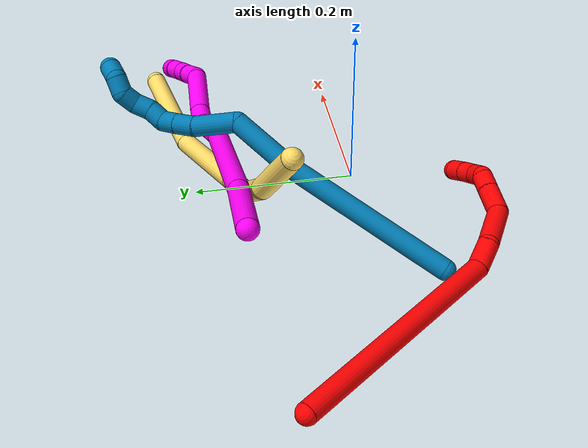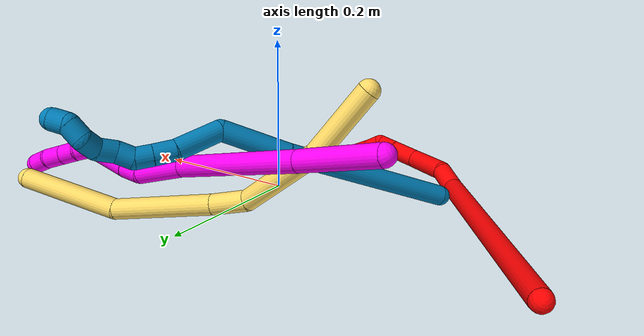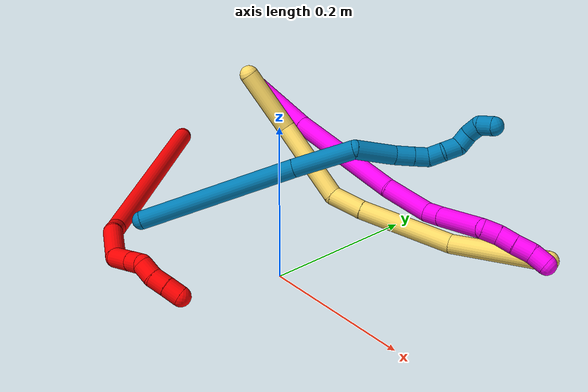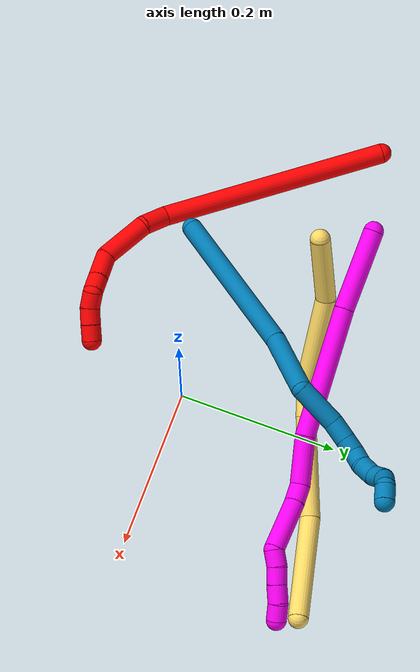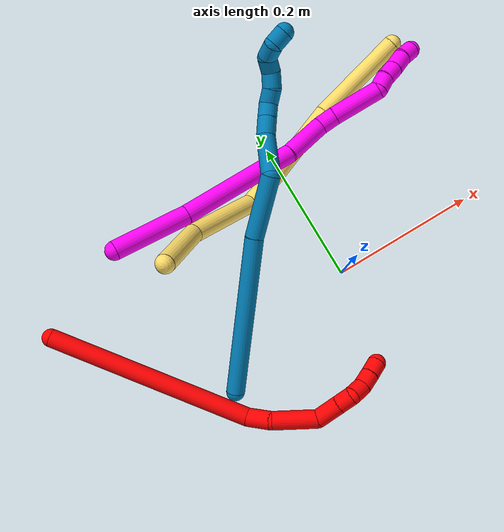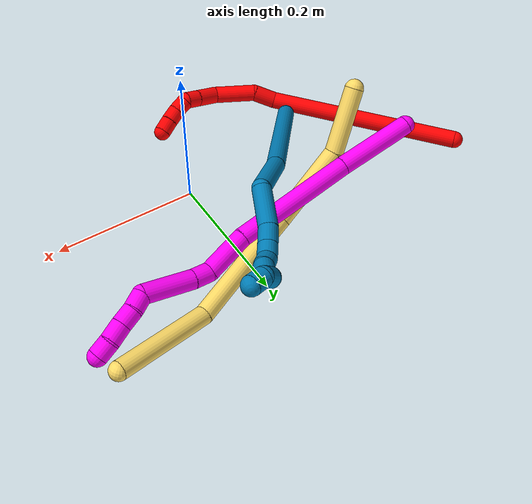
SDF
<sdf version="1.7">
 <world name="default">
  <model name="2">
   <static>0</static>
   <link name="2">
    <collision name="collision-cylinder-e_1_1_4">
     <pose>0.045901 -0.094089 -0.097689 2.37496 0.326324 0.775167</pose>
     <geometry><cylinder><radius>0.0125</radius><length>0.286376</length></cylinder></geometry>
     <surface>
      <friction><ode><mu>1.16</mu><mu2>1.16</mu2><slip1>0</slip1><slip2>0</slip2></ode></friction>
      <contact><ode><kp>1e+06</kp><kd>1</kd><max_vel>0</max_vel><min_depth>0.001</min_depth></ode></contact>
     </surface>
    </collision>
    <visual name="visual-cylinder-e_1_1_4">
     <pose>0.045901 -0.094089 -0.097689 2.37496 0.326324 0.775167</pose>
     <geometry><cylinder><radius>0.0125</radius><length>0.286376</length></cylinder></geometry>
     <material><ambient>1 0 0 1</ambient></material>
    </visual>
    <collision name="collision-cylinder-e_2_4_5">
     <pose>0.102483 -0.200155 -0.201365 2.03438 0.67334 1.03049</pose>
     <geometry><cylinder><radius>0.0125</radius><length>0.034256</length></cylinder></geometry>
     <surface>
      <friction><ode><mu>1.16</mu><mu2>1.16</mu2><slip1>0</slip1><slip2>0</slip2></ode></friction>
      <contact><ode><kp>1e+06</kp><kd>1</kd><max_vel>0</max_vel><min_depth>0.001</min_depth></ode></contact>
     </surface>
    </collision>
    <visual name="visual-cylinder-e_2_4_5">
     <pose>0.102483 -0.200155 -0.201365 2.03438 0.67334 1.03049</pose>
     <geometry><cylinder><radius>0.0125</radius><length>0.034256</length></cylinder></geometry>
     <material><ambient>1 0 0 1</ambient></material>
    </visual>
    <collision name="collision-cylinder-e_3_5_6">
     <pose>0.133027 -0.224655 -0.227207 2.57888 0.702252 1.80557</pose>
     <geometry><cylinder><radius>0.0125</radius><length>0.061501</length></cylinder></geometry>
     <surface>
      <friction><ode><mu>1.16</mu><mu2>1.16</mu2><slip1>0</slip1><slip2>0</slip2></ode></friction>
      <contact><ode><kp>1e+06</kp><kd>1</kd><max_vel>0</max_vel><min_depth>0.001</min_depth></ode></contact>
     </surface>
    </collision>
    <visual name="visual-cylinder-e_3_5_6">
     <pose>0.133027 -0.224655 -0.227207 2.57888 0.702252 1.80557</pose>
     <geometry><cylinder><radius>0.0125</radius><length>0.061501</length></cylinder></geometry>
     <material><ambient>1 0 0 1</ambient></material>
    </visual>
    <collision name="collision-cylinder-e_4_6_7">
     <pose>0.169784 -0.239339 -0.25049 2.57929 1.3354 2.43942</pose>
     <geometry><cylinder><radius>0.0125</radius><length>0.034748</length></cylinder></geometry>
     <surface>
      <friction><ode><mu>1.16</mu><mu2>1.16</mu2><slip1>0</slip1><slip2>0</slip2></ode></friction>
      <contact><ode><kp>1e+06</kp><kd>1</kd><max_vel>0</max_vel><min_depth>0.001</min_depth></ode></contact>
     </surface>
    </collision>
    <visual name="visual-cylinder-e_4_6_7">
     <pose>0.169784 -0.239339 -0.25049 2.57929 1.3354 2.43942</pose>
     <geometry><cylinder><radius>0.0125</radius><length>0.034748</length></cylinder></geometry>
     <material><ambient>1 0 0 1</ambient></material>
    </visual>
    <collision name="collision-cylinder-e_5_7_8">
     <pose>0.19702 -0.242831 -0.256016 2.57582 1.33498 2.43493</pose>
     <geometry><cylinder><radius>0.0125</radius><length>0.021271</length></cylinder></geometry>
     <surface>
      <friction><ode><mu>1.16</mu><mu2>1.16</mu2><slip1>0</slip1><slip2>0</slip2></ode></friction>
      <contact><ode><kp>1e+06</kp><kd>1</kd><max_vel>0</max_vel><min_depth>0.001</min_depth></ode></contact>
     </surface>
    </collision>
    <visual name="visual-cylinder-e_5_7_8">
     <pose>0.19702 -0.242831 -0.256016 2.57582 1.33498 2.43493</pose>
     <geometry><cylinder><radius>0.0125</radius><length>0.021271</length></cylinder></geometry>
     <material><ambient>1 0 0 1</ambient></material>
    </visual>
    <collision name="collision-cylinder-e_6_8_9">
     <pose>0.214068 -0.240494 -0.265174 -2.66228 0.700358 -1.9623</pose>
     <geometry><cylinder><radius>0.0125</radius><length>0.020812</length></cylinder></geometry>
     <surface>
      <friction><ode><mu>1.16</mu><mu2>1.16</mu2><slip1>0</slip1><slip2>0</slip2></ode></friction>
      <contact><ode><kp>1e+06</kp><kd>1</kd><max_vel>0</max_vel><min_depth>0.001</min_depth></ode></contact>
     </surface>
    </collision>
    <visual name="visual-cylinder-e_6_8_9">
     <pose>0.214068 -0.240494 -0.265174 -2.66228 0.700358 -1.9623</pose>
     <geometry><cylinder><radius>0.0125</radius><length>0.020812</length></cylinder></geometry>
     <material><ambient>1 0 0 1</ambient></material>
    </visual>
    <collision name="collision-cylinder-e_7_9_10">
     <pose>0.228405 -0.231829 -0.276976 -2.33021 0.836503 -1.60503</pose>
     <geometry><cylinder><radius>0.0125</radius><length>0.020559</length></cylinder></geometry>
     <surface>
      <friction><ode><mu>1.16</mu><mu2>1.16</mu2><slip1>0</slip1><slip2>0</slip2></ode></friction>
      <contact><ode><kp>1e+06</kp><kd>1</kd><max_vel>0</max_vel><min_depth>0.001</min_depth></ode></contact>
     </surface>
    </collision>
    <visual name="visual-cylinder-e_7_9_10">
     <pose>0.228405 -0.231829 -0.276976 -2.33021 0.836503 -1.60503</pose>
     <geometry><cylinder><radius>0.0125</radius><length>0.020559</length></cylinder></geometry>
     <material><ambient>1 0 0 1</ambient></material>
    </visual>
    <collision name="collision-cylinder-e_8_10_2">
     <pose>0.24326 -0.22145 -0.286582 -2.30548 0.783294 -1.4979</pose>
     <geometry><cylinder><radius>0.0125</radius><length>0.020477</length></cylinder></geometry>
     <surface>
      <friction><ode><mu>1.16</mu><mu2>1.16</mu2><slip1>0</slip1><slip2>0</slip2></ode></friction>
      <contact><ode><kp>1e+06</kp><kd>1</kd><max_vel>0</max_vel><min_depth>0.001</min_depth></ode></contact>
     </surface>
    </collision>
    <visual name="visual-cylinder-e_8_10_2">
     <pose>0.24326 -0.22145 -0.286582 -2.30548 0.783294 -1.4979</pose>
     <geometry><cylinder><radius>0.0125</radius><length>0.020477</length></cylinder></geometry>
     <material><ambient>1 0 0 1</ambient></material>
    </visual>
    <collision name="collision-sphere-2">
     <pose>0.250485 -0.216067 -0.291445 0 -0 0</pose>
     <geometry><sphere><radius>0.0125</radius></sphere></geometry>
     <surface>
      <friction><ode><mu>1.16</mu><mu2>1.16</mu2><slip1>0</slip1><slip2>0</slip2></ode></friction>
      <contact><ode><kp>1e+06</kp><kd>1</kd><max_vel>0</max_vel><min_depth>0.001</min_depth></ode></contact>
     </surface>
    </collision>
    <visual name="visual-sphere-2">
     <pose>0.250485 -0.216067 -0.291445 0 -0 0</pose>
     <geometry><sphere><radius>0.0125</radius></sphere></geometry>
     <material><ambient>1 0 0 1</ambient></material>
    </visual>
    <collision name="collision-sphere-10">
     <pose>0.236035 -0.226834 -0.281718 0 -0 0</pose>
     <geometry><sphere><radius>0.0125</radius></sphere></geometry>
     <surface>
      <friction><ode><mu>1.16</mu><mu2>1.16</mu2><slip1>0</slip1><slip2>0</slip2></ode></friction>
      <contact><ode><kp>1e+06</kp><kd>1</kd><max_vel>0</max_vel><min_depth>0.001</min_depth></ode></contact>
     </surface>
    </collision>
    <visual name="visual-sphere-10">
     <pose>0.236035 -0.226834 -0.281718 0 -0 0</pose>
     <geometry><sphere><radius>0.0125</radius></sphere></geometry>
     <material><ambient>1 0 0 1</ambient></material>
    </visual>
    <collision name="collision-sphere-9">
     <pose>0.220775 -0.236824 -0.272234 0 -0 0</pose>
     <geometry><sphere><radius>0.0125</radius></sphere></geometry>
     <surface>
      <friction><ode><mu>1.16</mu><mu2>1.16</mu2><slip1>0</slip1><slip2>0</slip2></ode></friction>
      <contact><ode><kp>1e+06</kp><kd>1</kd><max_vel>0</max_vel><min_depth>0.001</min_depth></ode></contact>
     </surface>
    </collision>
    <visual name="visual-sphere-9">
     <pose>0.220775 -0.236824 -0.272234 0 -0 0</pose>
     <geometry><sphere><radius>0.0125</radius></sphere></geometry>
     <material><ambient>1 0 0 1</ambient></material>
    </visual>
    <collision name="collision-sphere-4">
     <pose>0.091802 -0.188179 -0.195377 0 -0 0</pose>
     <geometry><sphere><radius>0.0125</radius></sphere></geometry>
     <surface>
      <friction><ode><mu>1.16</mu><mu2>1.16</mu2><slip1>0</slip1><slip2>0</slip2></ode></friction>
      <contact><ode><kp>1e+06</kp><kd>1</kd><max_vel>0</max_vel><min_depth>0.001</min_depth></ode></contact>
     </surface>
    </collision>
    <visual name="visual-sphere-4">
     <pose>0.091802 -0.188179 -0.195377 0 -0 0</pose>
     <geometry><sphere><radius>0.0125</radius></sphere></geometry>
     <material><ambient>1 0 0 1</ambient></material>
    </visual>
    <collision name="collision-sphere-1">
     <geometry><sphere><radius>0.0125</radius></sphere></geometry>
     <surface>
      <friction><ode><mu>1.16</mu><mu2>1.16</mu2><slip1>0</slip1><slip2>0</slip2></ode></friction>
      <contact><ode><kp>1e+06</kp><kd>1</kd><max_vel>0</max_vel><min_depth>0.001</min_depth></ode></contact>
     </surface>
    </collision>
    <visual name="visual-sphere-1">
     <geometry><sphere><radius>0.0125</radius></sphere></geometry>
     <material><ambient>1 0 0 1</ambient></material>
    </visual>
    <collision name="collision-sphere-8">
     <pose>0.207361 -0.244163 -0.258114 0 -0 0</pose>
     <geometry><sphere><radius>0.0125</radius></sphere></geometry>
     <surface>
      <friction><ode><mu>1.16</mu><mu2>1.16</mu2><slip1>0</slip1><slip2>0</slip2></ode></friction>
      <contact><ode><kp>1e+06</kp><kd>1</kd><max_vel>0</max_vel><min_depth>0.001</min_depth></ode></contact>
     </surface>
    </collision>
    <visual name="visual-sphere-8">
     <pose>0.207361 -0.244163 -0.258114 0 -0 0</pose>
     <geometry><sphere><radius>0.0125</radius></sphere></geometry>
     <material><ambient>1 0 0 1</ambient></material>
    </visual>
    <collision name="collision-sphere-5">
     <pose>0.113164 -0.212132 -0.207352 0 -0 0</pose>
     <geometry><sphere><radius>0.0125</radius></sphere></geometry>
     <surface>
      <friction><ode><mu>1.16</mu><mu2>1.16</mu2><slip1>0</slip1><slip2>0</slip2></ode></friction>
      <contact><ode><kp>1e+06</kp><kd>1</kd><max_vel>0</max_vel><min_depth>0.001</min_depth></ode></contact>
     </surface>
    </collision>
    <visual name="visual-sphere-5">
     <pose>0.113164 -0.212132 -0.207352 0 -0 0</pose>
     <geometry><sphere><radius>0.0125</radius></sphere></geometry>
     <material><ambient>1 0 0 1</ambient></material>
    </visual>
    <collision name="collision-sphere-6">
     <pose>0.152889 -0.237179 -0.247062 0 -0 0</pose>
     <geometry><sphere><radius>0.0125</radius></sphere></geometry>
     <surface>
      <friction><ode><mu>1.16</mu><mu2>1.16</mu2><slip1>0</slip1><slip2>0</slip2></ode></friction>
      <contact><ode><kp>1e+06</kp><kd>1</kd><max_vel>0</max_vel><min_depth>0.001</min_depth></ode></contact>
     </surface>
    </collision>
    <visual name="visual-sphere-6">
     <pose>0.152889 -0.237179 -0.247062 0 -0 0</pose>
     <geometry><sphere><radius>0.0125</radius></sphere></geometry>
     <material><ambient>1 0 0 1</ambient></material>
    </visual>
    <collision name="collision-sphere-7">
     <pose>0.186679 -0.241499 -0.253918 0 -0 0</pose>
     <geometry><sphere><radius>0.0125</radius></sphere></geometry>
     <surface>
      <friction><ode><mu>1.16</mu><mu2>1.16</mu2><slip1>0</slip1><slip2>0</slip2></ode></friction>
      <contact><ode><kp>1e+06</kp><kd>1</kd><max_vel>0</max_vel><min_depth>0.001</min_depth></ode></contact>
     </surface>
    </collision>
    <visual name="visual-sphere-7">
     <pose>0.186679 -0.241499 -0.253918 0 -0 0</pose>
     <geometry><sphere><radius>0.0125</radius></sphere></geometry>
     <material><ambient>1 0 0 1</ambient></material>
    </visual>
    <inertial>
     <pose>0.098119 -0.150812 -0.160157 0 -0 0</pose>
     <mass>0.5</mass>
     <inertia><ixx>0.00267</ixx><ixy>0</ixy><ixz>0</ixz><iyy>0.00062</iyy><iyz>0</iyz><izz>0.000624</izz></inertia>
    </inertial>
   </link>
   <pose>-0.384893 0.125845 0.01246 -0.677819 -0.346715 0.304319</pose>
  </model>
  <model name="5">
   <static>0</static>
   <link name="5">
    <collision name="collision-cylinder-e_1_1_4">
     <pose>0.01042 -0.000509 0.042044 0.012099 0.242924 0.001477</pose>
     <geometry><cylinder><radius>0.0125</radius><length>0.086638</length></cylinder></geometry>
     <surface>
      <friction><ode><mu>1.16</mu><mu2>1.16</mu2><slip1>0</slip1><slip2>0</slip2></ode></friction>
      <contact><ode><kp>1e+06</kp><kd>1</kd><max_vel>0</max_vel><min_depth>0.001</min_depth></ode></contact>
     </surface>
    </collision>
    <visual name="visual-cylinder-e_1_1_4">
     <pose>0.01042 -0.000509 0.042044 0.012099 0.242924 0.001477</pose>
     <geometry><cylinder><radius>0.0125</radius><length>0.086638</length></cylinder></geometry>
     <material><ambient>1 0.858824 0.4 1</ambient></material>
    </visual>
    <collision name="collision-cylinder-e_2_4_5">
     <pose>0.038754 0.018006 0.133329 -0.368665 0.327167 -0.061531</pose>
     <geometry><cylinder><radius>0.0125</radius><length>0.111489</length></cylinder></geometry>
     <surface>
      <friction><ode><mu>1.16</mu><mu2>1.16</mu2><slip1>0</slip1><slip2>0</slip2></ode></friction>
      <contact><ode><kp>1e+06</kp><kd>1</kd><max_vel>0</max_vel><min_depth>0.001</min_depth></ode></contact>
     </surface>
    </collision>
    <visual name="visual-cylinder-e_2_4_5">
     <pose>0.038754 0.018006 0.133329 -0.368665 0.327167 -0.061531</pose>
     <geometry><cylinder><radius>0.0125</radius><length>0.111489</length></cylinder></geometry>
     <material><ambient>1 0.858824 0.4 1</ambient></material>
    </visual>
    <collision name="collision-cylinder-e_3_5_6">
     <pose>0.072902 0.043863 0.19597 -0.471663 0.823462 -0.209111</pose>
     <geometry><cylinder><radius>0.0125</radius><length>0.044262</length></cylinder></geometry>
     <surface>
      <friction><ode><mu>1.16</mu><mu2>1.16</mu2><slip1>0</slip1><slip2>0</slip2></ode></friction>
      <contact><ode><kp>1e+06</kp><kd>1</kd><max_vel>0</max_vel><min_depth>0.001</min_depth></ode></contact>
     </surface>
    </collision>
    <visual name="visual-cylinder-e_3_5_6">
     <pose>0.072902 0.043863 0.19597 -0.471663 0.823462 -0.209111</pose>
     <geometry><cylinder><radius>0.0125</radius><length>0.044262</length></cylinder></geometry>
     <material><ambient>1 0.858824 0.4 1</ambient></material>
    </visual>
    <collision name="collision-cylinder-e_4_6_7">
     <pose>0.139029 0.068152 0.242911 -0.479807 0.922298 -0.241902</pose>
     <geometry><cylinder><radius>0.0125</radius><length>0.125206</length></cylinder></geometry>
     <surface>
      <friction><ode><mu>1.16</mu><mu2>1.16</mu2><slip1>0</slip1><slip2>0</slip2></ode></friction>
      <contact><ode><kp>1e+06</kp><kd>1</kd><max_vel>0</max_vel><min_depth>0.001</min_depth></ode></contact>
     </surface>
    </collision>
    <visual name="visual-cylinder-e_4_6_7">
     <pose>0.139029 0.068152 0.242911 -0.479807 0.922298 -0.241902</pose>
     <geometry><cylinder><radius>0.0125</radius><length>0.125206</length></cylinder></geometry>
     <material><ambient>1 0.858824 0.4 1</ambient></material>
    </visual>
    <collision name="collision-cylinder-e_5_7_2">
     <pose>0.244962 0.116521 0.293385 -1.06973 1.00934 -0.632565</pose>
     <geometry><cylinder><radius>0.0125</radius><length>0.132405</length></cylinder></geometry>
     <surface>
      <friction><ode><mu>1.16</mu><mu2>1.16</mu2><slip1>0</slip1><slip2>0</slip2></ode></friction>
      <contact><ode><kp>1e+06</kp><kd>1</kd><max_vel>0</max_vel><min_depth>0.001</min_depth></ode></contact>
     </surface>
    </collision>
    <visual name="visual-cylinder-e_5_7_2">
     <pose>0.244962 0.116521 0.293385 -1.06973 1.00934 -0.632565</pose>
     <geometry><cylinder><radius>0.0125</radius><length>0.132405</length></cylinder></geometry>
     <material><ambient>1 0.858824 0.4 1</ambient></material>
    </visual>
    <collision name="collision-sphere-2">
     <pose>0.301001 0.147435 0.310317 0 -0 0</pose>
     <geometry><sphere><radius>0.0125</radius></sphere></geometry>
     <surface>
      <friction><ode><mu>1.16</mu><mu2>1.16</mu2><slip1>0</slip1><slip2>0</slip2></ode></friction>
      <contact><ode><kp>1e+06</kp><kd>1</kd><max_vel>0</max_vel><min_depth>0.001</min_depth></ode></contact>
     </surface>
    </collision>
    <visual name="visual-sphere-2">
     <pose>0.301001 0.147435 0.310317 0 -0 0</pose>
     <geometry><sphere><radius>0.0125</radius></sphere></geometry>
     <material><ambient>1 0.858824 0.4 1</ambient></material>
    </visual>
    <collision name="collision-sphere-7">
     <pose>0.188923 0.085606 0.276453 0 -0 0</pose>
     <geometry><sphere><radius>0.0125</radius></sphere></geometry>
     <surface>
      <friction><ode><mu>1.16</mu><mu2>1.16</mu2><slip1>0</slip1><slip2>0</slip2></ode></friction>
      <contact><ode><kp>1e+06</kp><kd>1</kd><max_vel>0</max_vel><min_depth>0.001</min_depth></ode></contact>
     </surface>
    </collision>
    <visual name="visual-sphere-7">
     <pose>0.188923 0.085606 0.276453 0 -0 0</pose>
     <geometry><sphere><radius>0.0125</radius></sphere></geometry>
     <material><ambient>1 0.858824 0.4 1</ambient></material>
    </visual>
    <collision name="collision-sphere-6">
     <pose>0.089135 0.050698 0.20937 0 -0 0</pose>
     <geometry><sphere><radius>0.0125</radius></sphere></geometry>
     <surface>
      <friction><ode><mu>1.16</mu><mu2>1.16</mu2><slip1>0</slip1><slip2>0</slip2></ode></friction>
      <contact><ode><kp>1e+06</kp><kd>1</kd><max_vel>0</max_vel><min_depth>0.001</min_depth></ode></contact>
     </surface>
    </collision>
    <visual name="visual-sphere-6">
     <pose>0.089135 0.050698 0.20937 0 -0 0</pose>
     <geometry><sphere><radius>0.0125</radius></sphere></geometry>
     <material><ambient>1 0.858824 0.4 1</ambient></material>
    </visual>
    <collision name="collision-sphere-5">
     <pose>0.056669 0.037029 0.18257 0 -0 0</pose>
     <geometry><sphere><radius>0.0125</radius></sphere></geometry>
     <surface>
      <friction><ode><mu>1.16</mu><mu2>1.16</mu2><slip1>0</slip1><slip2>0</slip2></ode></friction>
      <contact><ode><kp>1e+06</kp><kd>1</kd><max_vel>0</max_vel><min_depth>0.001</min_depth></ode></contact>
     </surface>
    </collision>
    <visual name="visual-sphere-5">
     <pose>0.056669 0.037029 0.18257 0 -0 0</pose>
     <geometry><sphere><radius>0.0125</radius></sphere></geometry>
     <material><ambient>1 0.858824 0.4 1</ambient></material>
    </visual>
    <collision name="collision-sphere-1">
     <geometry><sphere><radius>0.0125</radius></sphere></geometry>
     <surface>
      <friction><ode><mu>1.16</mu><mu2>1.16</mu2><slip1>0</slip1><slip2>0</slip2></ode></friction>
      <contact><ode><kp>1e+06</kp><kd>1</kd><max_vel>0</max_vel><min_depth>0.001</min_depth></ode></contact>
     </surface>
    </collision>
    <visual name="visual-sphere-1">
     <geometry><sphere><radius>0.0125</radius></sphere></geometry>
     <material><ambient>1 0.858824 0.4 1</ambient></material>
    </visual>
    <collision name="collision-sphere-4">
     <pose>0.02084 -0.001017 0.084088 0 -0 0</pose>
     <geometry><sphere><radius>0.0125</radius></sphere></geometry>
     <surface>
      <friction><ode><mu>1.16</mu><mu2>1.16</mu2><slip1>0</slip1><slip2>0</slip2></ode></friction>
      <contact><ode><kp>1e+06</kp><kd>1</kd><max_vel>0</max_vel><min_depth>0.001</min_depth></ode></contact>
     </surface>
    </collision>
    <visual name="visual-sphere-4">
     <pose>0.02084 -0.001017 0.084088 0 -0 0</pose>
     <geometry><sphere><radius>0.0125</radius></sphere></geometry>
     <material><ambient>1 0.858824 0.4 1</ambient></material>
    </visual>
    <inertial>
     <pose>0.116583 0.055732 0.192882 0 -0 0</pose>
     <mass>0.5</mass>
     <inertia>
      <ixx>0.000288</ixx>
      <ixy>0</ixy>
      <ixz>0</ixz>
      <iyy>0.000419</iyy>
      <iyz>0</iyz>
      <izz>-0.00052</izz>
     </inertia>
    </inertial>
   </link>
   <pose>-0.194023 0.107597 0.176817 2.96422 -0.395348 0.7735</pose>
  </model>
  <model name="9">
   <static>0</static>
   <link name="9">
    <collision name="collision-cylinder-e_1_1_4">
     <pose>0.002923 0.006061 0.106517 -0.05684 0.027388 -0.000779</pose>
     <geometry><cylinder><radius>0.0125</radius><length>0.213458</length></cylinder></geometry>
     <surface>
      <friction><ode><mu>1.16</mu><mu2>1.16</mu2><slip1>0</slip1><slip2>0</slip2></ode></friction>
      <contact><ode><kp>1e+06</kp><kd>1</kd><max_vel>0</max_vel><min_depth>0.001</min_depth></ode></contact>
     </surface>
    </collision>
    <visual name="visual-cylinder-e_1_1_4">
     <pose>0.002923 0.006061 0.106517 -0.05684 0.027388 -0.000779</pose>
     <geometry><cylinder><radius>0.0125</radius><length>0.213458</length></cylinder></geometry>
     <material><ambient>0 0.490196 0.709804 1</ambient></material>
    </visual>
    <collision name="collision-cylinder-e_2_4_5">
     <pose>0.011727 0.017844 0.253932 -0.139009 0.141472 -0.009865</pose>
     <geometry><cylinder><radius>0.0125</radius><length>0.083428</length></cylinder></geometry>
     <surface>
      <friction><ode><mu>1.16</mu><mu2>1.16</mu2><slip1>0</slip1><slip2>0</slip2></ode></friction>
      <contact><ode><kp>1e+06</kp><kd>1</kd><max_vel>0</max_vel><min_depth>0.001</min_depth></ode></contact>
     </surface>
    </collision>
    <visual name="visual-cylinder-e_2_4_5">
     <pose>0.011727 0.017844 0.253932 -0.139009 0.141472 -0.009865</pose>
     <geometry><cylinder><radius>0.0125</radius><length>0.083428</length></cylinder></geometry>
     <material><ambient>0 0.490196 0.709804 1</ambient></material>
    </visual>
    <collision name="collision-cylinder-e_3_5_6">
     <pose>0.001738 0.030278 0.316716 -0.297598 -0.606246 0.093702</pose>
     <geometry><cylinder><radius>0.0125</radius><length>0.055709</length></cylinder></geometry>
     <surface>
      <friction><ode><mu>1.16</mu><mu2>1.16</mu2><slip1>0</slip1><slip2>0</slip2></ode></friction>
      <contact><ode><kp>1e+06</kp><kd>1</kd><max_vel>0</max_vel><min_depth>0.001</min_depth></ode></contact>
     </surface>
    </collision>
    <visual name="visual-cylinder-e_3_5_6">
     <pose>0.001738 0.030278 0.316716 -0.297598 -0.606246 0.093702</pose>
     <geometry><cylinder><radius>0.0125</radius><length>0.055709</length></cylinder></geometry>
     <material><ambient>0 0.490196 0.709804 1</ambient></material>
    </visual>
    <collision name="collision-cylinder-e_4_6_7">
     <pose>-0.018789 0.040797 0.349857 -0.326102 -0.373396 0.062132</pose>
     <geometry><cylinder><radius>0.0125</radius><length>0.025526</length></cylinder></geometry>
     <surface>
      <friction><ode><mu>1.16</mu><mu2>1.16</mu2><slip1>0</slip1><slip2>0</slip2></ode></friction>
      <contact><ode><kp>1e+06</kp><kd>1</kd><max_vel>0</max_vel><min_depth>0.001</min_depth></ode></contact>
     </surface>
    </collision>
    <visual name="visual-cylinder-e_4_6_7">
     <pose>-0.018789 0.040797 0.349857 -0.326102 -0.373396 0.062132</pose>
     <geometry><cylinder><radius>0.0125</radius><length>0.025526</length></cylinder></geometry>
     <material><ambient>0 0.490196 0.709804 1</ambient></material>
    </visual>
    <collision name="collision-cylinder-e_5_7_8">
     <pose>-0.026756 0.047613 0.370071 -0.324118 -0.337062 0.055621</pose>
     <geometry><cylinder><radius>0.0125</radius><length>0.020024</length></cylinder></geometry>
     <surface>
      <friction><ode><mu>1.16</mu><mu2>1.16</mu2><slip1>0</slip1><slip2>0</slip2></ode></friction>
      <contact><ode><kp>1e+06</kp><kd>1</kd><max_vel>0</max_vel><min_depth>0.001</min_depth></ode></contact>
     </surface>
    </collision>
    <visual name="visual-cylinder-e_5_7_8">
     <pose>-0.026756 0.047613 0.370071 -0.324118 -0.337062 0.055621</pose>
     <geometry><cylinder><radius>0.0125</radius><length>0.020024</length></cylinder></geometry>
     <material><ambient>0 0.490196 0.709804 1</ambient></material>
    </visual>
    <collision name="collision-cylinder-e_6_8_9">
     <pose>-0.028401 0.051464 0.388922 -0.084873 0.16627 -0.007076</pose>
     <geometry><cylinder><radius>0.0125</radius><length>0.020138</length></cylinder></geometry>
     <surface>
      <friction><ode><mu>1.16</mu><mu2>1.16</mu2><slip1>0</slip1><slip2>0</slip2></ode></friction>
      <contact><ode><kp>1e+06</kp><kd>1</kd><max_vel>0</max_vel><min_depth>0.001</min_depth></ode></contact>
     </surface>
    </collision>
    <visual name="visual-cylinder-e_6_8_9">
     <pose>-0.028401 0.051464 0.388922 -0.084873 0.16627 -0.007076</pose>
     <geometry><cylinder><radius>0.0125</radius><length>0.020138</length></cylinder></geometry>
     <material><ambient>0 0.490196 0.709804 1</ambient></material>
    </visual>
    <collision name="collision-cylinder-e_7_9_10">
     <pose>-0.02824 0.051839 0.409305 0.044554 -0.142426 -0.003179</pose>
     <geometry><cylinder><radius>0.0125</radius><length>0.021213</length></cylinder></geometry>
     <surface>
      <friction><ode><mu>1.16</mu><mu2>1.16</mu2><slip1>0</slip1><slip2>0</slip2></ode></friction>
      <contact><ode><kp>1e+06</kp><kd>1</kd><max_vel>0</max_vel><min_depth>0.001</min_depth></ode></contact>
     </surface>
    </collision>
    <visual name="visual-cylinder-e_7_9_10">
     <pose>-0.02824 0.051839 0.409305 0.044554 -0.142426 -0.003179</pose>
     <geometry><cylinder><radius>0.0125</radius><length>0.021213</length></cylinder></geometry>
     <material><ambient>0 0.490196 0.709804 1</ambient></material>
    </visual>
    <collision name="collision-cylinder-e_8_10_11">
     <pose>-0.028396 0.046485 0.428504 0.511241 0.134236 0.03513</pose>
     <geometry><cylinder><radius>0.0125</radius><length>0.020156</length></cylinder></geometry>
     <surface>
      <friction><ode><mu>1.16</mu><mu2>1.16</mu2><slip1>0</slip1><slip2>0</slip2></ode></friction>
      <contact><ode><kp>1e+06</kp><kd>1</kd><max_vel>0</max_vel><min_depth>0.001</min_depth></ode></contact>
     </surface>
    </collision>
    <visual name="visual-cylinder-e_8_10_11">
     <pose>-0.028396 0.046485 0.428504 0.511241 0.134236 0.03513</pose>
     <geometry><cylinder><radius>0.0125</radius><length>0.020156</length></cylinder></geometry>
     <material><ambient>0 0.490196 0.709804 1</ambient></material>
    </visual>
    <collision name="collision-cylinder-e_9_11_12">
     <pose>-0.020903 0.041254 0.445293 0.042584 0.64984 0.014347</pose>
     <geometry><cylinder><radius>0.0125</radius><length>0.020311</length></cylinder></geometry>
     <surface>
      <friction><ode><mu>1.16</mu><mu2>1.16</mu2><slip1>0</slip1><slip2>0</slip2></ode></friction>
      <contact><ode><kp>1e+06</kp><kd>1</kd><max_vel>0</max_vel><min_depth>0.001</min_depth></ode></contact>
     </surface>
    </collision>
    <visual name="visual-cylinder-e_9_11_12">
     <pose>-0.020903 0.041254 0.445293 0.042584 0.64984 0.014347</pose>
     <geometry><cylinder><radius>0.0125</radius><length>0.020311</length></cylinder></geometry>
     <material><ambient>0 0.490196 0.709804 1</ambient></material>
    </visual>
    <collision name="collision-cylinder-e_10_12_2">
     <pose>-0.011699 0.04636 0.461201 -0.608122 0.310265 -0.098068</pose>
     <geometry><cylinder><radius>0.0125</radius><length>0.020037</length></cylinder></geometry>
     <surface>
      <friction><ode><mu>1.16</mu><mu2>1.16</mu2><slip1>0</slip1><slip2>0</slip2></ode></friction>
      <contact><ode><kp>1e+06</kp><kd>1</kd><max_vel>0</max_vel><min_depth>0.001</min_depth></ode></contact>
     </surface>
    </collision>
    <visual name="visual-cylinder-e_10_12_2">
     <pose>-0.011699 0.04636 0.461201 -0.608122 0.310265 -0.098068</pose>
     <geometry><cylinder><radius>0.0125</radius><length>0.020037</length></cylinder></geometry>
     <material><ambient>0 0.490196 0.709804 1</ambient></material>
    </visual>
    <collision name="collision-sphere-2">
     <pose>-0.008641 0.051811 0.469031 0 -0 0</pose>
     <geometry><sphere><radius>0.0125</radius></sphere></geometry>
     <surface>
      <friction><ode><mu>1.16</mu><mu2>1.16</mu2><slip1>0</slip1><slip2>0</slip2></ode></friction>
      <contact><ode><kp>1e+06</kp><kd>1</kd><max_vel>0</max_vel><min_depth>0.001</min_depth></ode></contact>
     </surface>
    </collision>
    <visual name="visual-sphere-2">
     <pose>-0.008641 0.051811 0.469031 0 -0 0</pose>
     <geometry><sphere><radius>0.0125</radius></sphere></geometry>
     <material><ambient>0 0.490196 0.709804 1</ambient></material>
    </visual>
    <collision name="collision-sphere-12">
     <pose>-0.014758 0.04091 0.453371 0 -0 0</pose>
     <geometry><sphere><radius>0.0125</radius></sphere></geometry>
     <surface>
      <friction><ode><mu>1.16</mu><mu2>1.16</mu2><slip1>0</slip1><slip2>0</slip2></ode></friction>
      <contact><ode><kp>1e+06</kp><kd>1</kd><max_vel>0</max_vel><min_depth>0.001</min_depth></ode></contact>
     </surface>
    </collision>
    <visual name="visual-sphere-12">
     <pose>-0.014758 0.04091 0.453371 0 -0 0</pose>
     <geometry><sphere><radius>0.0125</radius></sphere></geometry>
     <material><ambient>0 0.490196 0.709804 1</ambient></material>
    </visual>
    <collision name="collision-sphere-11">
     <pose>-0.027048 0.041598 0.437214 0 -0 0</pose>
     <geometry><sphere><radius>0.0125</radius></sphere></geometry>
     <surface>
      <friction><ode><mu>1.16</mu><mu2>1.16</mu2><slip1>0</slip1><slip2>0</slip2></ode></friction>
      <contact><ode><kp>1e+06</kp><kd>1</kd><max_vel>0</max_vel><min_depth>0.001</min_depth></ode></contact>
     </surface>
    </collision>
    <visual name="visual-sphere-11">
     <pose>-0.027048 0.041598 0.437214 0 -0 0</pose>
     <geometry><sphere><radius>0.0125</radius></sphere></geometry>
     <material><ambient>0 0.490196 0.709804 1</ambient></material>
    </visual>
    <collision name="collision-sphere-10">
     <pose>-0.029745 0.051371 0.419794 0 -0 0</pose>
     <geometry><sphere><radius>0.0125</radius></sphere></geometry>
     <surface>
      <friction><ode><mu>1.16</mu><mu2>1.16</mu2><slip1>0</slip1><slip2>0</slip2></ode></friction>
      <contact><ode><kp>1e+06</kp><kd>1</kd><max_vel>0</max_vel><min_depth>0.001</min_depth></ode></contact>
     </surface>
    </collision>
    <visual name="visual-sphere-10">
     <pose>-0.029745 0.051371 0.419794 0 -0 0</pose>
     <geometry><sphere><radius>0.0125</radius></sphere></geometry>
     <material><ambient>0 0.490196 0.709804 1</ambient></material>
    </visual>
    <collision name="collision-sphere-9">
     <pose>-0.026734 0.052306 0.398816 0 -0 0</pose>
     <geometry><sphere><radius>0.0125</radius></sphere></geometry>
     <surface>
      <friction><ode><mu>1.16</mu><mu2>1.16</mu2><slip1>0</slip1><slip2>0</slip2></ode></friction>
      <contact><ode><kp>1e+06</kp><kd>1</kd><max_vel>0</max_vel><min_depth>0.001</min_depth></ode></contact>
     </surface>
    </collision>
    <visual name="visual-sphere-9">
     <pose>-0.026734 0.052306 0.398816 0 -0 0</pose>
     <geometry><sphere><radius>0.0125</radius></sphere></geometry>
     <material><ambient>0 0.490196 0.709804 1</ambient></material>
    </visual>
    <collision name="collision-sphere-4">
     <pose>0.005845 0.012122 0.213033 0 -0 0</pose>
     <geometry><sphere><radius>0.0125</radius></sphere></geometry>
     <surface>
      <friction><ode><mu>1.16</mu><mu2>1.16</mu2><slip1>0</slip1><slip2>0</slip2></ode></friction>
      <contact><ode><kp>1e+06</kp><kd>1</kd><max_vel>0</max_vel><min_depth>0.001</min_depth></ode></contact>
     </surface>
    </collision>
    <visual name="visual-sphere-4">
     <pose>0.005845 0.012122 0.213033 0 -0 0</pose>
     <geometry><sphere><radius>0.0125</radius></sphere></geometry>
     <material><ambient>0 0.490196 0.709804 1</ambient></material>
    </visual>
    <collision name="collision-sphere-1">
     <geometry><sphere><radius>0.0125</radius></sphere></geometry>
     <surface>
      <friction><ode><mu>1.16</mu><mu2>1.16</mu2><slip1>0</slip1><slip2>0</slip2></ode></friction>
      <contact><ode><kp>1e+06</kp><kd>1</kd><max_vel>0</max_vel><min_depth>0.001</min_depth></ode></contact>
     </surface>
    </collision>
    <visual name="visual-sphere-1">
     <geometry><sphere><radius>0.0125</radius></sphere></geometry>
     <material><ambient>0 0.490196 0.709804 1</ambient></material>
    </visual>
    <collision name="collision-sphere-8">
     <pose>-0.030067 0.050623 0.379028 0 -0 0</pose>
     <geometry><sphere><radius>0.0125</radius></sphere></geometry>
     <surface>
      <friction><ode><mu>1.16</mu><mu2>1.16</mu2><slip1>0</slip1><slip2>0</slip2></ode></friction>
      <contact><ode><kp>1e+06</kp><kd>1</kd><max_vel>0</max_vel><min_depth>0.001</min_depth></ode></contact>
     </surface>
    </collision>
    <visual name="visual-sphere-8">
     <pose>-0.030067 0.050623 0.379028 0 -0 0</pose>
     <geometry><sphere><radius>0.0125</radius></sphere></geometry>
     <material><ambient>0 0.490196 0.709804 1</ambient></material>
    </visual>
    <collision name="collision-sphere-5">
     <pose>0.017609 0.023566 0.294831 0 -0 0</pose>
     <geometry><sphere><radius>0.0125</radius></sphere></geometry>
     <surface>
      <friction><ode><mu>1.16</mu><mu2>1.16</mu2><slip1>0</slip1><slip2>0</slip2></ode></friction>
      <contact><ode><kp>1e+06</kp><kd>1</kd><max_vel>0</max_vel><min_depth>0.001</min_depth></ode></contact>
     </surface>
    </collision>
    <visual name="visual-sphere-5">
     <pose>0.017609 0.023566 0.294831 0 -0 0</pose>
     <geometry><sphere><radius>0.0125</radius></sphere></geometry>
     <material><ambient>0 0.490196 0.709804 1</ambient></material>
    </visual>
    <collision name="collision-sphere-6">
     <pose>-0.014133 0.036991 0.3386 0 -0 0</pose>
     <geometry><sphere><radius>0.0125</radius></sphere></geometry>
     <surface>
      <friction><ode><mu>1.16</mu><mu2>1.16</mu2><slip1>0</slip1><slip2>0</slip2></ode></friction>
      <contact><ode><kp>1e+06</kp><kd>1</kd><max_vel>0</max_vel><min_depth>0.001</min_depth></ode></contact>
     </surface>
    </collision>
    <visual name="visual-sphere-6">
     <pose>-0.014133 0.036991 0.3386 0 -0 0</pose>
     <geometry><sphere><radius>0.0125</radius></sphere></geometry>
     <material><ambient>0 0.490196 0.709804 1</ambient></material>
    </visual>
    <collision name="collision-sphere-7">
     <pose>-0.023445 0.044604 0.361114 0 -0 0</pose>
     <geometry><sphere><radius>0.0125</radius></sphere></geometry>
     <surface>
      <friction><ode><mu>1.16</mu><mu2>1.16</mu2><slip1>0</slip1><slip2>0</slip2></ode></friction>
      <contact><ode><kp>1e+06</kp><kd>1</kd><max_vel>0</max_vel><min_depth>0.001</min_depth></ode></contact>
     </surface>
    </collision>
    <visual name="visual-sphere-7">
     <pose>-0.023445 0.044604 0.361114 0 -0 0</pose>
     <geometry><sphere><radius>0.0125</radius></sphere></geometry>
     <material><ambient>0 0.490196 0.709804 1</ambient></material>
    </visual>
    <inertial>
     <pose>-0.003437 0.022608 0.242687 0 -0 0</pose>
     <mass>0.5</mass>
     <inertia><ixx>0.000893</ixx><ixy>0</ixy><ixz>0</ixz><iyy>0.0009</iyy><iyz>0</iyz><izz>-4.3e-05</izz></inertia>
    </inertial>
   </link>
   <pose>-0.207738 -0.064211 0.011563 -1.01944 -0.803605 -1.0212</pose>
  </model>
  <model name="10">
   <static>0</static>
   <link name="10">
    <collision name="collision-cylinder-e_1_1_4">
     <pose>0.016711 0.003703 0.047701 -0.077478 0.33604 -0.013148</pose>
     <geometry><cylinder><radius>0.0125</radius><length>0.101357</length></cylinder></geometry>
     <surface>
      <friction><ode><mu>1.16</mu><mu2>1.16</mu2><slip1>0</slip1><slip2>0</slip2></ode></friction>
      <contact><ode><kp>1e+06</kp><kd>1</kd><max_vel>0</max_vel><min_depth>0.001</min_depth></ode></contact>
     </surface>
    </collision>
    <visual name="visual-cylinder-e_1_1_4">
     <pose>0.016711 0.003703 0.047701 -0.077478 0.33604 -0.013148</pose>
     <geometry><cylinder><radius>0.0125</radius><length>0.101357</length></cylinder></geometry>
     <material><ambient>1 0 0.964706 1</ambient></material>
    </visual>
    <collision name="collision-cylinder-e_2_4_5">
     <pose>0.059802 0.007287 0.171925 0.001561 0.331966 0.000261</pose>
     <geometry><cylinder><radius>0.0125</radius><length>0.161886</length></cylinder></geometry>
     <surface>
      <friction><ode><mu>1.16</mu><mu2>1.16</mu2><slip1>0</slip1><slip2>0</slip2></ode></friction>
      <contact><ode><kp>1e+06</kp><kd>1</kd><max_vel>0</max_vel><min_depth>0.001</min_depth></ode></contact>
     </surface>
    </collision>
    <visual name="visual-cylinder-e_2_4_5">
     <pose>0.059802 0.007287 0.171925 0.001561 0.331966 0.000261</pose>
     <geometry><cylinder><radius>0.0125</radius><length>0.161886</length></cylinder></geometry>
     <material><ambient>1 0 0.964706 1</ambient></material>
    </visual>
    <collision name="collision-cylinder-e_3_5_6">
     <pose>0.091704 0.003027 0.277646 0.14086 0.185127 0.013097</pose>
     <geometry><cylinder><radius>0.0125</radius><length>0.060005</length></cylinder></geometry>
     <surface>
      <friction><ode><mu>1.16</mu><mu2>1.16</mu2><slip1>0</slip1><slip2>0</slip2></ode></friction>
      <contact><ode><kp>1e+06</kp><kd>1</kd><max_vel>0</max_vel><min_depth>0.001</min_depth></ode></contact>
     </surface>
    </collision>
    <visual name="visual-cylinder-e_3_5_6">
     <pose>0.091704 0.003027 0.277646 0.14086 0.185127 0.013097</pose>
     <geometry><cylinder><radius>0.0125</radius><length>0.060005</length></cylinder></geometry>
     <material><ambient>1 0 0.964706 1</ambient></material>
    </visual>
    <collision name="collision-cylinder-e_4_6_7">
     <pose>0.104113 -0.003217 0.316468 0.215254 0.610034 0.068008</pose>
     <geometry><cylinder><radius>0.0125</radius><length>0.024039</length></cylinder></geometry>
     <surface>
      <friction><ode><mu>1.16</mu><mu2>1.16</mu2><slip1>0</slip1><slip2>0</slip2></ode></friction>
      <contact><ode><kp>1e+06</kp><kd>1</kd><max_vel>0</max_vel><min_depth>0.001</min_depth></ode></contact>
     </surface>
    </collision>
    <visual name="visual-cylinder-e_4_6_7">
     <pose>0.104113 -0.003217 0.316468 0.215254 0.610034 0.068008</pose>
     <geometry><cylinder><radius>0.0125</radius><length>0.024039</length></cylinder></geometry>
     <material><ambient>1 0 0.964706 1</ambient></material>
    </visual>
    <collision name="collision-cylinder-e_5_7_8">
     <pose>0.133178 -0.009988 0.350708 0.187349 0.724607 0.07119</pose>
     <geometry><cylinder><radius>0.0125</radius><length>0.066922</length></cylinder></geometry>
     <surface>
      <friction><ode><mu>1.16</mu><mu2>1.16</mu2><slip1>0</slip1><slip2>0</slip2></ode></friction>
      <contact><ode><kp>1e+06</kp><kd>1</kd><max_vel>0</max_vel><min_depth>0.001</min_depth></ode></contact>
     </surface>
    </collision>
    <visual name="visual-cylinder-e_5_7_8">
     <pose>0.133178 -0.009988 0.350708 0.187349 0.724607 0.07119</pose>
     <geometry><cylinder><radius>0.0125</radius><length>0.066922</length></cylinder></geometry>
     <material><ambient>1 0 0.964706 1</ambient></material>
    </visual>
    <collision name="collision-cylinder-e_6_8_9">
     <pose>0.155574 -0.018418 0.385001 0.370947 0.020816 0.003906</pose>
     <geometry><cylinder><radius>0.0125</radius><length>0.020772</length></cylinder></geometry>
     <surface>
      <friction><ode><mu>1.16</mu><mu2>1.16</mu2><slip1>0</slip1><slip2>0</slip2></ode></friction>
      <contact><ode><kp>1e+06</kp><kd>1</kd><max_vel>0</max_vel><min_depth>0.001</min_depth></ode></contact>
     </surface>
    </collision>
    <visual name="visual-cylinder-e_6_8_9">
     <pose>0.155574 -0.018418 0.385001 0.370947 0.020816 0.003906</pose>
     <geometry><cylinder><radius>0.0125</radius><length>0.020772</length></cylinder></geometry>
     <material><ambient>1 0 0.964706 1</ambient></material>
    </visual>
    <collision name="collision-cylinder-e_7_9_10">
     <pose>0.156776 -0.0241 0.405105 0.18189 0.092748 0.008464</pose>
     <geometry><cylinder><radius>0.0125</radius><length>0.021294</length></cylinder></geometry>
     <surface>
      <friction><ode><mu>1.16</mu><mu2>1.16</mu2><slip1>0</slip1><slip2>0</slip2></ode></friction>
      <contact><ode><kp>1e+06</kp><kd>1</kd><max_vel>0</max_vel><min_depth>0.001</min_depth></ode></contact>
     </surface>
    </collision>
    <visual name="visual-cylinder-e_7_9_10">
     <pose>0.156776 -0.0241 0.405105 0.18189 0.092748 0.008464</pose>
     <geometry><cylinder><radius>0.0125</radius><length>0.021294</length></cylinder></geometry>
     <material><ambient>1 0 0.964706 1</ambient></material>
    </visual>
    <collision name="collision-cylinder-e_8_10_11">
     <pose>0.158362 -0.02893 0.426687 0.255342 0.051953 0.006671</pose>
     <geometry><cylinder><radius>0.0125</radius><length>0.023091</length></cylinder></geometry>
     <surface>
      <friction><ode><mu>1.16</mu><mu2>1.16</mu2><slip1>0</slip1><slip2>0</slip2></ode></friction>
      <contact><ode><kp>1e+06</kp><kd>1</kd><max_vel>0</max_vel><min_depth>0.001</min_depth></ode></contact>
     </surface>
    </collision>
    <visual name="visual-cylinder-e_8_10_11">
     <pose>0.158362 -0.02893 0.426687 0.255342 0.051953 0.006671</pose>
     <geometry><cylinder><radius>0.0125</radius><length>0.023091</length></cylinder></geometry>
     <material><ambient>1 0 0.964706 1</ambient></material>
    </visual>
    <collision name="collision-cylinder-e_9_11_2">
     <pose>0.159442 -0.03223 0.448142 0.03764 0.046643 0.000878</pose>
     <geometry><cylinder><radius>0.0125</radius><length>0.020634</length></cylinder></geometry>
     <surface>
      <friction><ode><mu>1.16</mu><mu2>1.16</mu2><slip1>0</slip1><slip2>0</slip2></ode></friction>
      <contact><ode><kp>1e+06</kp><kd>1</kd><max_vel>0</max_vel><min_depth>0.001</min_depth></ode></contact>
     </surface>
    </collision>
    <visual name="visual-cylinder-e_9_11_2">
     <pose>0.159442 -0.03223 0.448142 0.03764 0.046643 0.000878</pose>
     <geometry><cylinder><radius>0.0125</radius><length>0.020634</length></cylinder></geometry>
     <material><ambient>1 0 0.964706 1</ambient></material>
    </visual>
    <collision name="collision-sphere-2">
     <pose>0.159923 -0.032618 0.458441 0 -0 0</pose>
     <geometry><sphere><radius>0.0125</radius></sphere></geometry>
     <surface>
      <friction><ode><mu>1.16</mu><mu2>1.16</mu2><slip1>0</slip1><slip2>0</slip2></ode></friction>
      <contact><ode><kp>1e+06</kp><kd>1</kd><max_vel>0</max_vel><min_depth>0.001</min_depth></ode></contact>
     </surface>
    </collision>
    <visual name="visual-sphere-2">
     <pose>0.159923 -0.032618 0.458441 0 -0 0</pose>
     <geometry><sphere><radius>0.0125</radius></sphere></geometry>
     <material><ambient>1 0 0.964706 1</ambient></material>
    </visual>
    <collision name="collision-sphere-11">
     <pose>0.158961 -0.031842 0.437843 0 -0 0</pose>
     <geometry><sphere><radius>0.0125</radius></sphere></geometry>
     <surface>
      <friction><ode><mu>1.16</mu><mu2>1.16</mu2><slip1>0</slip1><slip2>0</slip2></ode></friction>
      <contact><ode><kp>1e+06</kp><kd>1</kd><max_vel>0</max_vel><min_depth>0.001</min_depth></ode></contact>
     </surface>
    </collision>
    <visual name="visual-sphere-11">
     <pose>0.158961 -0.031842 0.437843 0 -0 0</pose>
     <geometry><sphere><radius>0.0125</radius></sphere></geometry>
     <material><ambient>1 0 0.964706 1</ambient></material>
    </visual>
    <collision name="collision-sphere-10">
     <pose>0.157762 -0.026018 0.415531 0 -0 0</pose>
     <geometry><sphere><radius>0.0125</radius></sphere></geometry>
     <surface>
      <friction><ode><mu>1.16</mu><mu2>1.16</mu2><slip1>0</slip1><slip2>0</slip2></ode></friction>
      <contact><ode><kp>1e+06</kp><kd>1</kd><max_vel>0</max_vel><min_depth>0.001</min_depth></ode></contact>
     </surface>
    </collision>
    <visual name="visual-sphere-10">
     <pose>0.157762 -0.026018 0.415531 0 -0 0</pose>
     <geometry><sphere><radius>0.0125</radius></sphere></geometry>
     <material><ambient>1 0 0.964706 1</ambient></material>
    </visual>
    <collision name="collision-sphere-9">
     <pose>0.15579 -0.022182 0.394679 0 -0 0</pose>
     <geometry><sphere><radius>0.0125</radius></sphere></geometry>
     <surface>
      <friction><ode><mu>1.16</mu><mu2>1.16</mu2><slip1>0</slip1><slip2>0</slip2></ode></friction>
      <contact><ode><kp>1e+06</kp><kd>1</kd><max_vel>0</max_vel><min_depth>0.001</min_depth></ode></contact>
     </surface>
    </collision>
    <visual name="visual-sphere-9">
     <pose>0.15579 -0.022182 0.394679 0 -0 0</pose>
     <geometry><sphere><radius>0.0125</radius></sphere></geometry>
     <material><ambient>1 0 0.964706 1</ambient></material>
    </visual>
    <collision name="collision-sphere-4">
     <pose>0.033423 0.007406 0.095401 0 -0 0</pose>
     <geometry><sphere><radius>0.0125</radius></sphere></geometry>
     <surface>
      <friction><ode><mu>1.16</mu><mu2>1.16</mu2><slip1>0</slip1><slip2>0</slip2></ode></friction>
      <contact><ode><kp>1e+06</kp><kd>1</kd><max_vel>0</max_vel><min_depth>0.001</min_depth></ode></contact>
     </surface>
    </collision>
    <visual name="visual-sphere-4">
     <pose>0.033423 0.007406 0.095401 0 -0 0</pose>
     <geometry><sphere><radius>0.0125</radius></sphere></geometry>
     <material><ambient>1 0 0.964706 1</ambient></material>
    </visual>
    <collision name="collision-sphere-1">
     <geometry><sphere><radius>0.0125</radius></sphere></geometry>
     <surface>
      <friction><ode><mu>1.16</mu><mu2>1.16</mu2><slip1>0</slip1><slip2>0</slip2></ode></friction>
      <contact><ode><kp>1e+06</kp><kd>1</kd><max_vel>0</max_vel><min_depth>0.001</min_depth></ode></contact>
     </surface>
    </collision>
    <visual name="visual-sphere-1">
     <geometry><sphere><radius>0.0125</radius></sphere></geometry>
     <material><ambient>1 0 0.964706 1</ambient></material>
    </visual>
    <collision name="collision-sphere-8">
     <pose>0.155358 -0.014654 0.375324 0 -0 0</pose>
     <geometry><sphere><radius>0.0125</radius></sphere></geometry>
     <surface>
      <friction><ode><mu>1.16</mu><mu2>1.16</mu2><slip1>0</slip1><slip2>0</slip2></ode></friction>
      <contact><ode><kp>1e+06</kp><kd>1</kd><max_vel>0</max_vel><min_depth>0.001</min_depth></ode></contact>
     </surface>
    </collision>
    <visual name="visual-sphere-8">
     <pose>0.155358 -0.014654 0.375324 0 -0 0</pose>
     <geometry><sphere><radius>0.0125</radius></sphere></geometry>
     <material><ambient>1 0 0.964706 1</ambient></material>
    </visual>
    <collision name="collision-sphere-5">
     <pose>0.086182 0.007167 0.248449 0 -0 0</pose>
     <geometry><sphere><radius>0.0125</radius></sphere></geometry>
     <surface>
      <friction><ode><mu>1.16</mu><mu2>1.16</mu2><slip1>0</slip1><slip2>0</slip2></ode></friction>
      <contact><ode><kp>1e+06</kp><kd>1</kd><max_vel>0</max_vel><min_depth>0.001</min_depth></ode></contact>
     </surface>
    </collision>
    <visual name="visual-sphere-5">
     <pose>0.086182 0.007167 0.248449 0 -0 0</pose>
     <geometry><sphere><radius>0.0125</radius></sphere></geometry>
     <material><ambient>1 0 0.964706 1</ambient></material>
    </visual>
    <collision name="collision-sphere-6">
     <pose>0.097227 -0.001113 0.306844 0 -0 0</pose>
     <geometry><sphere><radius>0.0125</radius></sphere></geometry>
     <surface>
      <friction><ode><mu>1.16</mu><mu2>1.16</mu2><slip1>0</slip1><slip2>0</slip2></ode></friction>
      <contact><ode><kp>1e+06</kp><kd>1</kd><max_vel>0</max_vel><min_depth>0.001</min_depth></ode></contact>
     </surface>
    </collision>
    <visual name="visual-sphere-6">
     <pose>0.097227 -0.001113 0.306844 0 -0 0</pose>
     <geometry><sphere><radius>0.0125</radius></sphere></geometry>
     <material><ambient>1 0 0.964706 1</ambient></material>
    </visual>
    <collision name="collision-sphere-7">
     <pose>0.110999 -0.005321 0.326092 0 -0 0</pose>
     <geometry><sphere><radius>0.0125</radius></sphere></geometry>
     <surface>
      <friction><ode><mu>1.16</mu><mu2>1.16</mu2><slip1>0</slip1><slip2>0</slip2></ode></friction>
      <contact><ode><kp>1e+06</kp><kd>1</kd><max_vel>0</max_vel><min_depth>0.001</min_depth></ode></contact>
     </surface>
    </collision>
    <visual name="visual-sphere-7">
     <pose>0.110999 -0.005321 0.326092 0 -0 0</pose>
     <geometry><sphere><radius>0.0125</radius></sphere></geometry>
     <material><ambient>1 0 0.964706 1</ambient></material>
    </visual>
    <inertial>
     <pose>0.083619 -0.002476 0.232256 0 -0 0</pose>
     <mass>0.5</mass>
     <inertia>
      <ixx>0.000488</ixx>
      <ixy>0</ixy>
      <ixz>0</ixz>
      <iyy>0.000505</iyy>
      <iyz>0</iyz>
      <izz>-0.000133</izz>
     </inertia>
    </inertial>
   </link>
   <pose>-0.241374 0.160722 0.131351 -2.32515 -0.804704 -0.734749</pose>
  </model>
 </world>
</sdf>
